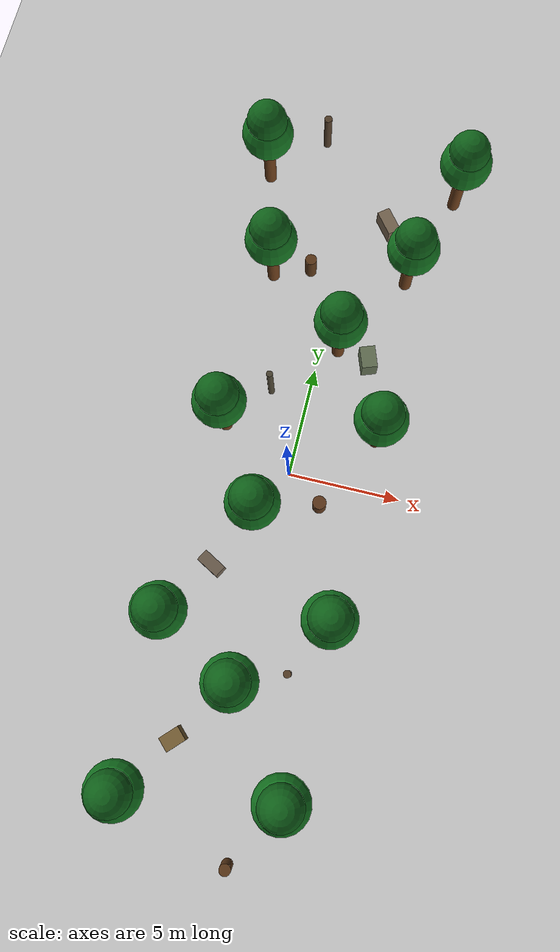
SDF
<?xml version="1.0"?>
<sdf version="1.6">
  <world name="default">
    <scene>
      <ambient>0.75 0.78 0.72 1</ambient>
      <background>0.42 0.50 0.44 1</background>
      <shadows>true</shadows>
    </scene>

    <include>
      <uri>model://sun</uri>
    </include>
    <include>
      <uri>model://ground_plane</uri>
    </include>

    <!-- Start at (0, -18), yaw +Y. These trees create a real but passable low-altitude corridor. -->
    <include><uri>model://ego_tree</uri><name>tree_left_01</name><pose>-3.2 -14.0 0 0 0 0.0</pose></include>
    <include><uri>model://ego_tree</uri><name>tree_right_01</name><pose>3.0 -13.0 0 0 0 0.4</pose></include>
    <include><uri>model://ego_tree</uri><name>tree_center_01</name><pose>0.0 -9.2 0 0 0 0.9</pose></include>
    <include><uri>model://ego_tree</uri><name>tree_left_02</name><pose>-3.4 -7.2 0 0 0 1.3</pose></include>
    <include><uri>model://ego_tree</uri><name>tree_right_02</name><pose>3.2 -6.0 0 0 0 1.7</pose></include>
    <include><uri>model://ego_tree</uri><name>tree_center_02</name><pose>-0.9 -2.2 0 0 0 2.1</pose></include>
    <include><uri>model://ego_tree</uri><name>tree_left_03</name><pose>-3.3 1.6 0 0 0 2.5</pose></include>
    <include><uri>model://ego_tree</uri><name>tree_right_03</name><pose>3.4 2.4 0 0 0 2.9</pose></include>
    <include><uri>model://ego_tree</uri><name>tree_center_03</name><pose>0.8 6.2 0 0 0 3.3</pose></include>
    <include><uri>model://ego_tree</uri><name>tree_left_04</name><pose>-3.0 9.2 0 0 0 3.7</pose></include>
    <include><uri>model://ego_tree</uri><name>tree_right_04</name><pose>3.1 10.2 0 0 0 4.1</pose></include>
    <include><uri>model://ego_tree</uri><name>tree_left_05</name><pose>-4.4 14.2 0 0 0 4.5</pose></include>
    <include><uri>model://ego_tree</uri><name>tree_right_05</name><pose>4.5 14.8 0 0 0 4.9</pose></include>

    <!-- Extra lidar-visible test obstacles. They have collision geometry, so OctoMap can see them. -->
    <model name="test_stump_01">
      <static>true</static>
      <pose>1.45 -16.2 0 0 0 0.3</pose>
      <link name="link">
        <pose>0 0 0.55 0 0 0</pose>
        <collision name="collision"><geometry><cylinder><radius>0.24</radius><length>1.10</length></cylinder></geometry></collision>
        <visual name="visual"><geometry><cylinder><radius>0.24</radius><length>1.10</length></cylinder></geometry><material><ambient>0.28 0.16 0.08 1</ambient><diffuse>0.36 0.22 0.10 1</diffuse></material></visual>
      </link>
    </model>

    <model name="test_box_01">
      <static>true</static>
      <pose>-1.9 -12.0 0 0 0 0.8</pose>
      <link name="link">
        <pose>0 0 0.45 0 0 0</pose>
        <collision name="collision"><geometry><box><size>0.90 0.65 0.90</size></box></geometry></collision>
        <visual name="visual"><geometry><box><size>0.90 0.65 0.90</size></box></geometry><material><ambient>0.35 0.28 0.16 1</ambient><diffuse>0.48 0.38 0.21 1</diffuse></material></visual>
      </link>
    </model>

    <model name="test_pole_01">
      <static>true</static>
      <pose>2.05 -8.4 0 0 0 0</pose>
      <link name="link">
        <pose>0 0 1.10 0 0 0</pose>
        <collision name="collision"><geometry><cylinder><radius>0.16</radius><length>2.20</length></cylinder></geometry></collision>
        <visual name="visual"><geometry><cylinder><radius>0.16</radius><length>2.20</length></cylinder></geometry><material><ambient>0.24 0.18 0.12 1</ambient><diffuse>0.34 0.25 0.16 1</diffuse></material></visual>
      </link>
    </model>

    <model name="test_box_02">
      <static>true</static>
      <pose>-2.25 -4.7 0 0 0 -0.5</pose>
      <link name="link">
        <pose>0 0 0.35 0 0 0</pose>
        <collision name="collision"><geometry><box><size>1.10 0.55 0.70</size></box></geometry></collision>
        <visual name="visual"><geometry><box><size>1.10 0.55 0.70</size></box></geometry><material><ambient>0.30 0.26 0.22 1</ambient><diffuse>0.42 0.36 0.30 1</diffuse></material></visual>
      </link>
    </model>

    <model name="test_stump_02">
      <static>true</static>
      <pose>1.65 -1.1 0 0 0 0.1</pose>
      <link name="link">
        <pose>0 0 0.48 0 0 0</pose>
        <collision name="collision"><geometry><cylinder><radius>0.30</radius><length>0.96</length></cylinder></geometry></collision>
        <visual name="visual"><geometry><cylinder><radius>0.30</radius><length>0.96</length></cylinder></geometry><material><ambient>0.26 0.15 0.08 1</ambient><diffuse>0.37 0.22 0.11 1</diffuse></material></visual>
      </link>
    </model>

    <model name="test_pole_02">
      <static>true</static>
      <pose>-1.70 3.6 0 0 0 0</pose>
      <link name="link">
        <pose>0 0 1.20 0 0 0</pose>
        <collision name="collision"><geometry><cylinder><radius>0.14</radius><length>2.40</length></cylinder></geometry></collision>
        <visual name="visual"><geometry><cylinder><radius>0.14</radius><length>2.40</length></cylinder></geometry><material><ambient>0.20 0.18 0.14 1</ambient><diffuse>0.30 0.27 0.20 1</diffuse></material></visual>
      </link>
    </model>

    <model name="test_box_03">
      <static>true</static>
      <pose>2.25 5.9 0 0 0 0.35</pose>
      <link name="link">
        <pose>0 0 0.50 0 0 0</pose>
        <collision name="collision"><geometry><box><size>0.70 1.00 1.00</size></box></geometry></collision>
        <visual name="visual"><geometry><box><size>0.70 1.00 1.00</size></box></geometry><material><ambient>0.28 0.31 0.24 1</ambient><diffuse>0.39 0.44 0.33 1</diffuse></material></visual>
      </link>
    </model>

    <model name="test_stump_03">
      <static>true</static>
      <pose>-1.35 9.8 0 0 0 0.5</pose>
      <link name="link">
        <pose>0 0 0.62 0 0 0</pose>
        <collision name="collision"><geometry><cylinder><radius>0.26</radius><length>1.24</length></cylinder></geometry></collision>
        <visual name="visual"><geometry><cylinder><radius>0.26</radius><length>1.24</length></cylinder></geometry><material><ambient>0.25 0.14 0.07 1</ambient><diffuse>0.36 0.22 0.10 1</diffuse></material></visual>
      </link>
    </model>

    <model name="test_box_04">
      <static>true</static>
      <pose>1.70 12.8 0 0 0 -0.9</pose>
      <link name="link">
        <pose>0 0 0.40 0 0 0</pose>
        <collision name="collision"><geometry><box><size>1.20 0.60 0.80</size></box></geometry></collision>
        <visual name="visual"><geometry><box><size>1.20 0.60 0.80</size></box></geometry><material><ambient>0.34 0.30 0.25 1</ambient><diffuse>0.47 0.40 0.32 1</diffuse></material></visual>
      </link>
    </model>

    <model name="test_pole_03">
      <static>true</static>
      <pose>-2.15 16.6 0 0 0 0</pose>
      <link name="link">
        <pose>0 0 1.00 0 0 0</pose>
        <collision name="collision"><geometry><cylinder><radius>0.18</radius><length>2.00</length></cylinder></geometry></collision>
        <visual name="visual"><geometry><cylinder><radius>0.18</radius><length>2.00</length></cylinder></geometry><material><ambient>0.22 0.17 0.12 1</ambient><diffuse>0.32 0.24 0.16 1</diffuse></material></visual>
      </link>
    </model>

    <physics name="default_physics" default="0" type="ode">
      <gravity>0 0 -9.8066</gravity>
      <ode>
        <solver>
          <type>quick</type>
          <iters>10</iters>
          <sor>1.3</sor>
        </solver>
      </ode>
      <max_step_size>0.004</max_step_size>
      <real_time_factor>1</real_time_factor>
      <real_time_update_rate>250</real_time_update_rate>
    </physics>
  </world>
</sdf>

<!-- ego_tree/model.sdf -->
<sdf version="1.6">
  <model name="ego_tree">
    <static>true</static>
    <link name="trunk">
      <pose>0 0 2.1 0 0 0</pose>
      <collision name="trunk_collision">
        <geometry>
          <cylinder>
            <radius>0.32</radius>
            <length>4.2</length>
          </cylinder>
        </geometry>
      </collision>
      <visual name="trunk_visual">
        <geometry>
          <cylinder>
            <radius>0.28</radius>
            <length>4.2</length>
          </cylinder>
        </geometry>
        <material>
          <ambient>0.32 0.18 0.08 1</ambient>
          <diffuse>0.42 0.24 0.10 1</diffuse>
        </material>
      </visual>
    </link>
    <link name="lower_canopy">
      <pose>0 0 3.5 0 0 0</pose>
      <collision name="lower_canopy_collision">
        <geometry>
          <sphere>
            <radius>1.15</radius>
          </sphere>
        </geometry>
      </collision>
      <visual name="lower_canopy_visual">
        <geometry>
          <sphere>
            <radius>1.15</radius>
          </sphere>
        </geometry>
        <material>
          <ambient>0.05 0.30 0.09 1</ambient>
          <diffuse>0.08 0.46 0.13 1</diffuse>
        </material>
      </visual>
    </link>
    <link name="upper_canopy">
      <pose>0 0 4.4 0 0 0</pose>
      <collision name="upper_canopy_collision">
        <geometry>
          <sphere>
            <radius>0.9</radius>
          </sphere>
        </geometry>
      </collision>
      <visual name="upper_canopy_visual">
        <geometry>
          <sphere>
            <radius>0.9</radius>
          </sphere>
        </geometry>
        <material>
          <ambient>0.04 0.24 0.07 1</ambient>
          <diffuse>0.06 0.38 0.10 1</diffuse>
        </material>
      </visual>
    </link>
  </model>
</sdf>
